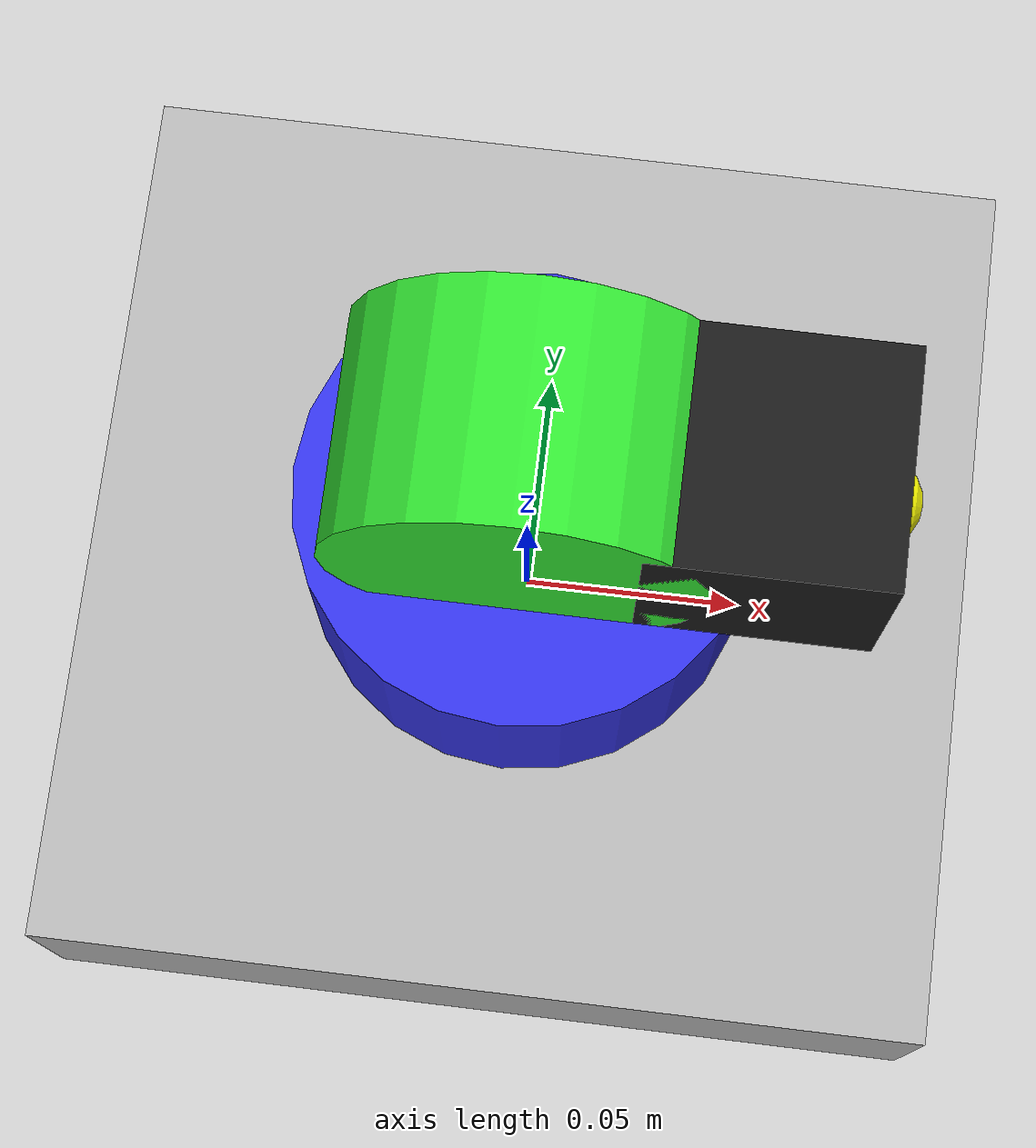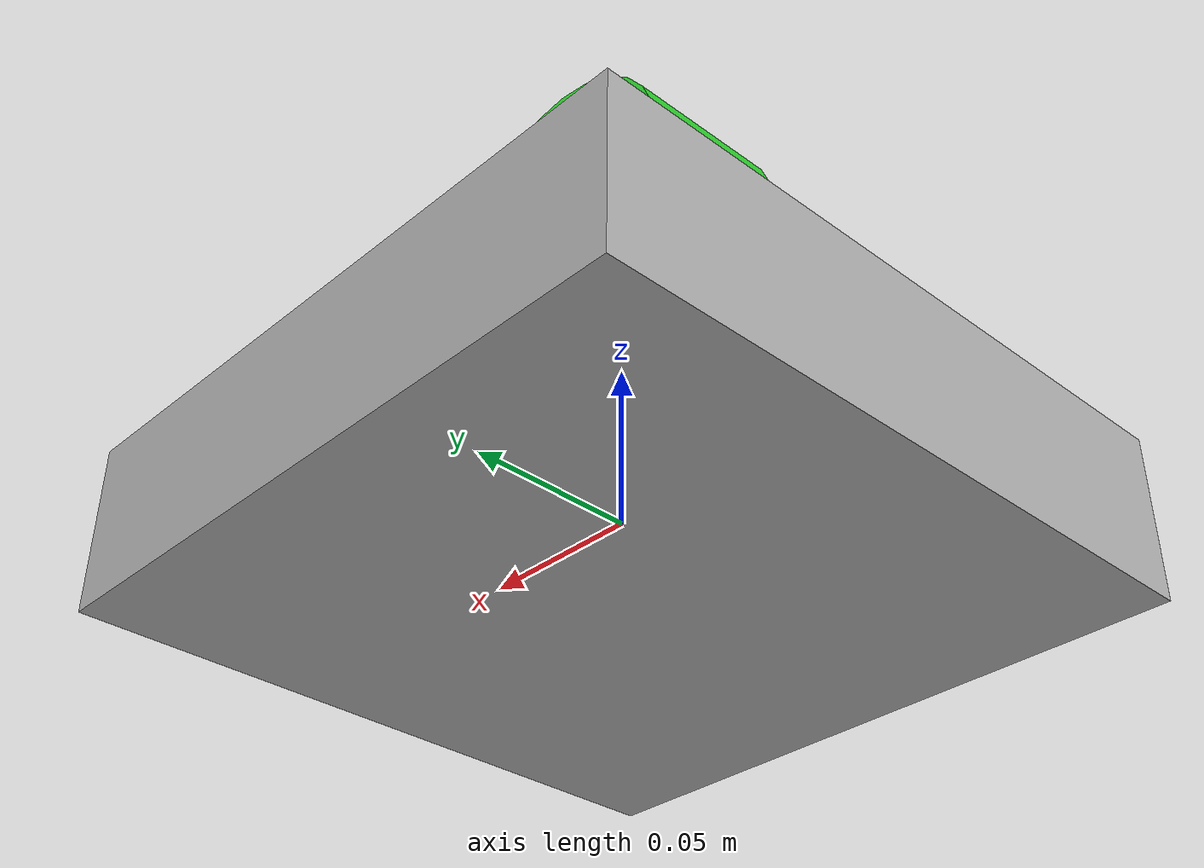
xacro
<?xml version="1.0"?>
<robot name="gimbal_mani" xmlns:xacro="http://www.ros.org/wiki/xacro">

  <xacro:macro name="inertial_box" params="mass x y z">
    <inertial>
      <mass value="${mass}"/>
      <origin xyz="0 0 0" rpy="0 0 0"/>
      <inertia ixx="${mass/12.0*(y*y + z*z)}"
               ixy="0.0"
               ixz="0.0"
               iyy="${mass/12.0*(x*x + z*z)}"
               iyz="0.0"
               izz="${mass/12.0*(x*x + y*y)}"/>
    </inertial>
  </xacro:macro>

  <!-- base_link -->
  <link name="base_link">
    <visual>
      <origin xyz="0 0 0" rpy="0 0 0"/>
      <geometry>
        <box size="0.2 0.2 0.05"/>
      </geometry>
      <material name="grey">
        <color rgba="0.7 0.7 0.7 1.0"/>
      </material>
    </visual>
    <collision>
      <geometry>
        <box size="0.2 0.2 0.05"/>
      </geometry>
    </collision>
    <xacro:inertial_box mass="1.0" x="0.2" y="0.2" z="0.05"/>
  </link>

  <gazebo>
      <plugin filename="libgazebo_ros2_control.so" name="gazebo_ros2_control">
          <parameters>$(find gimbal_mani)/config/controller.yaml</parameters>
      </plugin>
  </gazebo>

  <!-- yaw_link -->
  <link name="gimbal_yaw_link">
    <visual>
      <geometry>
        <cylinder length="0.05" radius="0.05"/>
      </geometry>
      <material name="blue">
        <color rgba="0.2 0.2 0.9 1.0"/>
      </material>
    </visual>
    <collision>
      <geometry>
        <cylinder length="0.05" radius="0.05"/>
      </geometry>
    </collision>
    <xacro:inertial_box mass="0.5" x="0.1" y="0.1" z="0.05"/>
  </link>

  <!-- pitch_link -->
  <link name="gimbal_pitch_link">
    <visual>
      <origin xyz="0.0 0.0 0.0" rpy="${pi/2} ${pi/2} 0.0"/>
      <geometry>
        <cylinder length="0.05" radius="0.04"/>
      </geometry>
      <material name="green">
        <color rgba="0.2 0.9 0.2 1.0"/>
      </material>
    </visual>
    <collision>
      <geometry>
        <cylinder length="0.05" radius="0.04"/>
      </geometry>
    </collision>
    <xacro:inertial_box mass="0.4" x="0.08" y="0.08" z="0.05"/>
  </link>

  <!-- camera_link -->
  <link name="camera_link">
    <visual>
      <geometry>
        <box size="0.05 0.05 0.05"/>
      </geometry>
      <material name="black">
        <color rgba="0.1 0.1 0.1 1.0"/>
      </material>
    </visual>
    <collision>
      <geometry>
        <box size="0.05 0.05 0.05"/>
      </geometry>
    </collision>
    <xacro:inertial_box mass="0.2" x="0.05" y="0.05" z="0.05"/>
  </link>

  <!-- camera_optical_frame -->
  <link name="camera_optical_frame">
    <visual>
      <origin xyz="0 0 0" rpy="0 0 0"/>
      <geometry>
        <sphere radius="0.01"/>
      </geometry>
      <material name="yellow">
        <color rgba="1.0 1.0 0.0 1.0"/>
      </material>
    </visual>
  </link>

  <!-- yaw joint -->
  <joint name="yaw_joint" type="revolute">
    <parent link="base_link"/>
    <child link="gimbal_yaw_link"/>
    <origin xyz="0 0 0.05" rpy="0 0 0"/>
    <axis xyz="0 0 1"/>
    <limit lower="-2.5" upper="2.5" effort="5.0" velocity="2.0"/>
  </joint>

  <!-- pitch joint -->
  <joint name="pitch_joint" type="revolute">
    <parent link="gimbal_yaw_link"/>
    <child link="gimbal_pitch_link"/>
    <origin xyz="0 0 0.05" rpy="0 0 0"/>
    <axis xyz="0 1 0"/>
    <dynamics damping="0.7" friction="0.1"/>
    <limit lower="-1.57" upper="0.5" effort="5.0" velocity="2.0"/>
  </joint>

  <!-- camera fixed -->
  <joint name="camera_fixed_joint" type="fixed">
    <parent link="gimbal_pitch_link"/>
    <child link="camera_link"/>
    <origin xyz="0.05 0 0" rpy="0 0 0"/>
  </joint>

  <!-- camera optical frame -->
  <joint name="camera_optical_joint" type="fixed">
    <parent link="camera_link"/>
    <child link="camera_optical_frame"/>
    <!-- ROS 카메라 표준 REP-103 optical frame 변환 -->
    <origin xyz="0.02 0 0" rpy="${-pi/2} 0 ${-pi/2}"/>
  </joint>

  <!-- Gazebo 카메라 센서 -->
  <gazebo reference="camera_link">
    <sensor type="camera" name="gimbal_camera">
      <always_on>true</always_on>
      <update_rate>30.0</update_rate>

      <camera name="gimbal_cam">
        <horizontal_fov>1.047</horizontal_fov>
        <image>
          <width>640</width>
          <height>480</height>
          <format>R8G8B8</format>
        </image>
        <clip>
          <near>0.05</near>
          <far>50.0</far>
        </clip>
      </camera>
      <plugin name="gazebo_ros_camera" filename="libgazebo_ros_camera.so">
        <ros>
          <namespace>/gimbal</namespace>
          <argument>image:=image_raw</argument>
          <argument>camera_info:=camera_info</argument>
        </ros>
        <frame_name>camera_optical_frame</frame_name>
      </plugin>
    </sensor>
  </gazebo>

  <ros2_control name="GimbalSystem" type="system">
    <hardware>
      <plugin>gazebo_ros2_control/GazeboSystem</plugin>
    </hardware>

    <joint name="yaw_joint">
      <command_interface name="position"/>
      <state_interface name="position"/>
      <state_interface name="velocity"/>
    </joint>

    <joint name="pitch_joint">
      <command_interface name="position"/>
      <state_interface name="position"/>
      <state_interface name="velocity"/>
    </joint>
  </ros2_control>

  <link name="tof_link">
    <visual>
      <geometry>
        <box size="0.01 0.01 0.005"/>
      </geometry>
      <material name="black">
        <color rgba="0 0 0 1"/>
      </material>
    </visual>
    <collision>
      <geometry>
        <box size="0.01 0.01 0.005"/>
      </geometry>
    </collision>
    <inertial>
      <mass value="0.001"/> <inertia ixx="0.000001" ixy="0" ixz="0" iyy="0.000001" iyz="0" izz="0.000001"/>
    </inertial>
  </link>

  <joint name="tof_joint" type="fixed">
    <parent link="camera_link"/>
    <child link="tof_link"/>
    <origin xyz="0.025 0.0 -0.023" rpy="0 0 0"/>
  </joint>

  <gazebo reference="tof_link">
    <sensor type="ray" name="tof_sensor">
      <always_on>true</always_on>
      <pose>0 0 0 0 0 0</pose>
      <visualize>true</visualize> <update_rate>30</update_rate> <ray>
        <scan>
          <horizontal>
            <samples>1</samples>
            <resolution>1</resolution>
            <min_angle>-0.01</min_angle> <max_angle>0.01</max_angle>
          </horizontal>
          <vertical>
            <samples>1</samples>
            <resolution>1</resolution>
            <min_angle>-0.01</min_angle>
            <max_angle>0.01</max_angle>
          </vertical>
        </scan>
        <range>
          <min>0.02</min> <max>2.0</max>  <resolution>0.01</resolution>
        </range>
        <radiation_type>infrared</radiation_type>
      </ray>

      <plugin name="tof_controller" filename="libgazebo_ros_ray_sensor.so">
        <ros>
          <namespace>/gimbal</namespace>
          <remapping>~/out:=tof_distance</remapping>
        </ros>

        <output_type>sensor_msgs/LaserScan</output_type>

        <radiation_type>infrared</radiation_type>

        <frame_name>tof_link</frame_name>
      </plugin>
    </sensor>
  </gazebo>
</robot>
